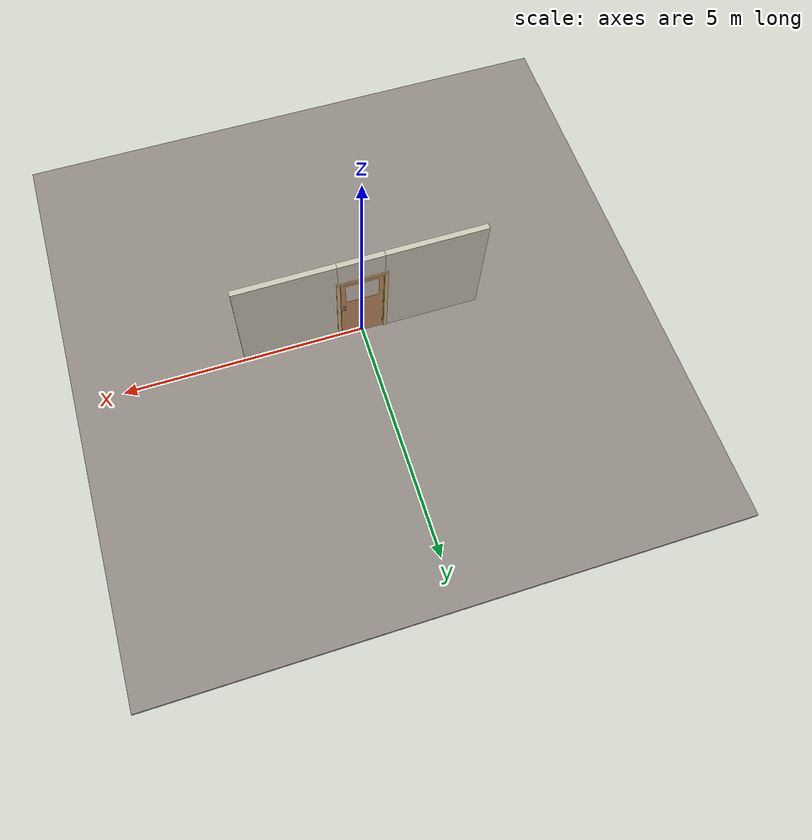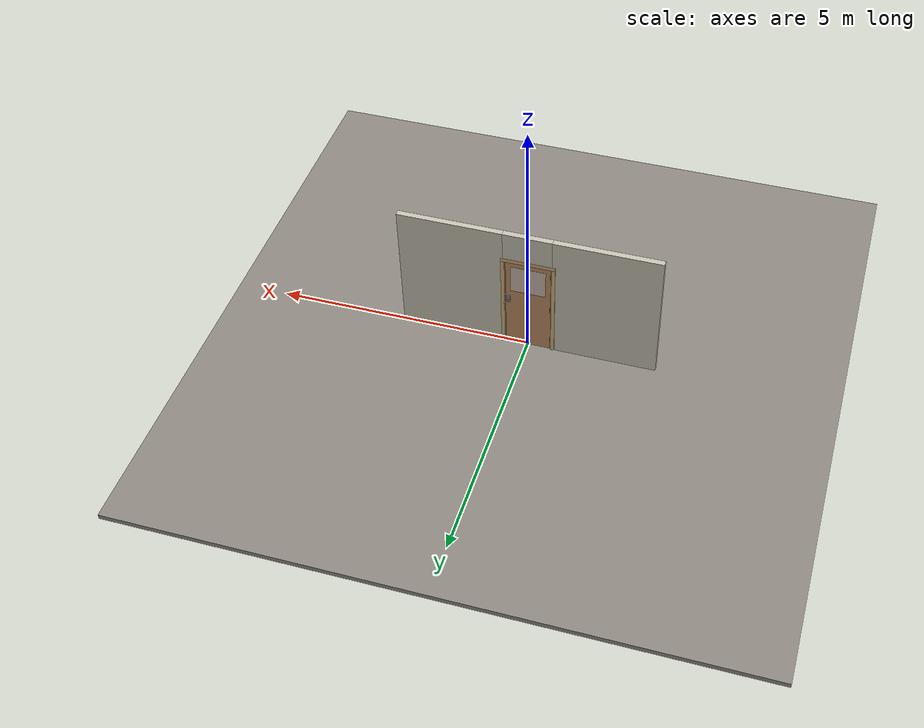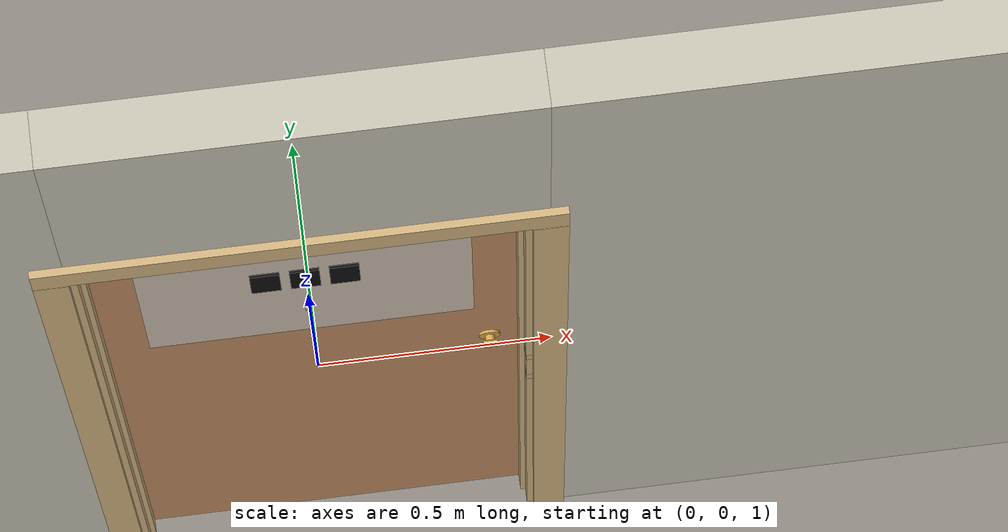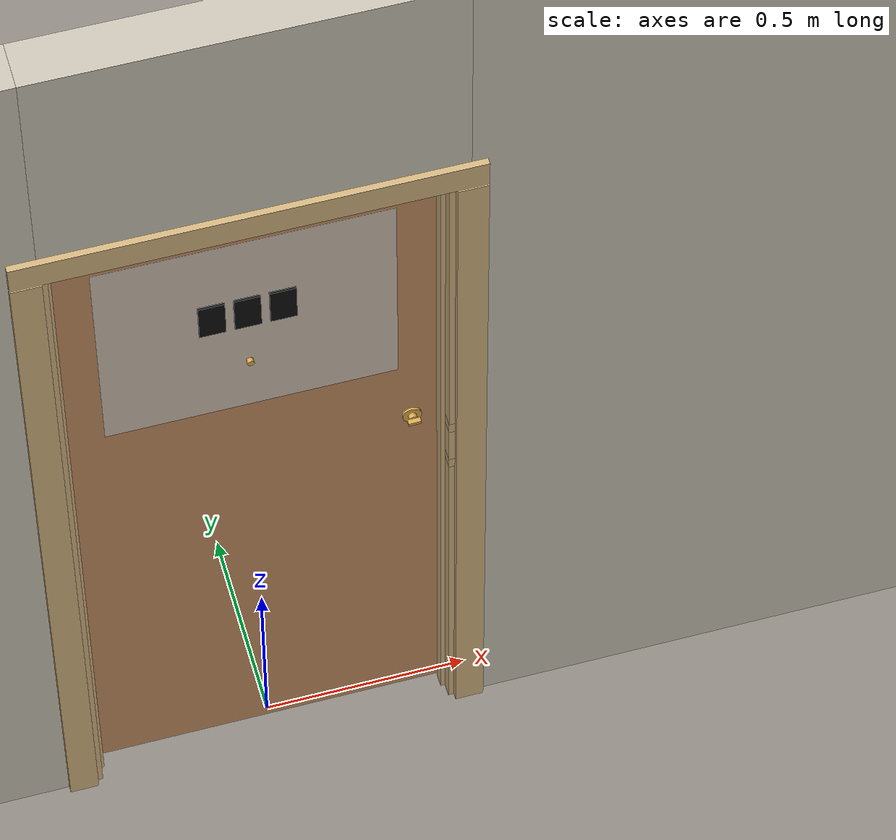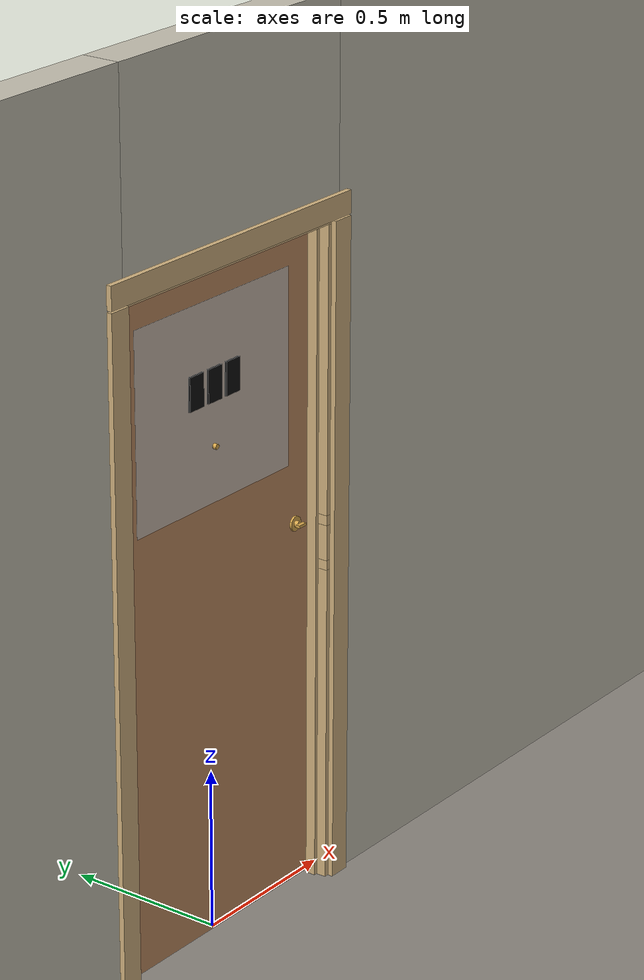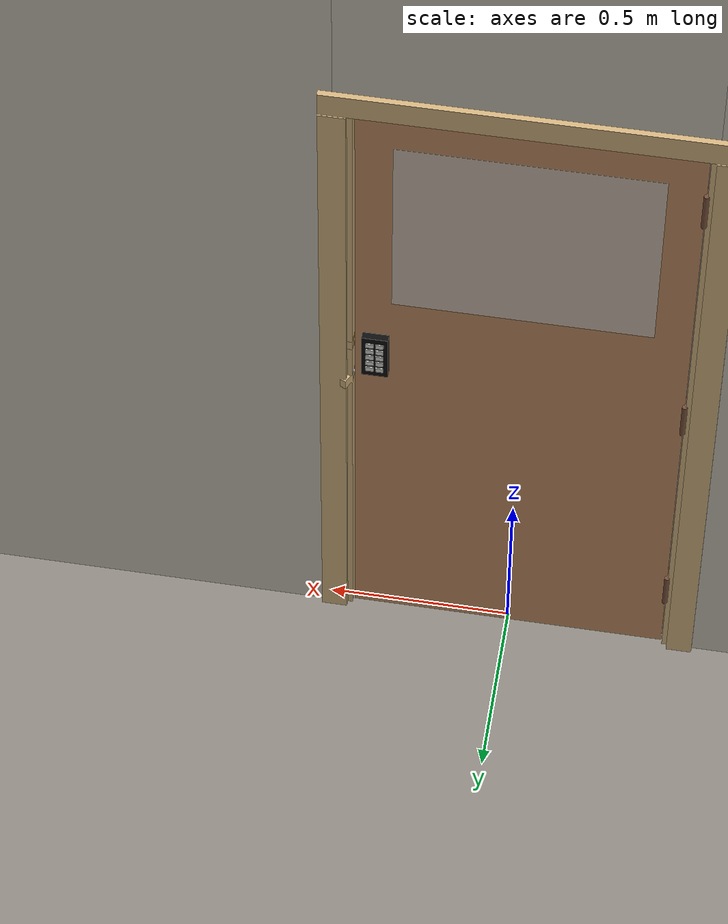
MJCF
<?xml version="1.0" ?>
<mujoco model="db0464_swing_single_full">
  <compiler angle="radian" meshdir="../../hardware" texturedir="../../textures" autolimits="true" inertiafromgeom="false"/>
  <option timestep="0.002" integrator="implicitfast" cone="elliptic" impratio="10" noslip_iterations="3">
    <flag multiccd="enable"/>
  </option>
  <size memory="16M"/>
  <default>
    <geom condim="4" solref="0.005 1" solimp="0.95 0.99 0.001"/>
    <joint solreflimit="0.005 1" solimplimit="0.95 0.99 0.001"/>
    <tendon solreflimit="0.005 1"/>
    <equality solref="0.002 1"/>
  </default>
  <visual>
    <headlight ambient="0.4 0.4 0.4" diffuse="0.7 0.7 0.7" specular="0.2 0.2 0.2"/>
    <quality shadowsize="4096"/>
    <map znear="0.01" zfar="60"/>
  </visual>
  <asset>
    <mesh name="hinge_e22b26c0c1" file="hinge_e22b26c0c1.obj"/>
    <mesh name="hinge_jamb_e1d088f8dc" file="hinge_jamb_e1d088f8dc.obj"/>
    <mesh name="house_numbers_ad0a8e8be0" file="house_numbers_ad0a8e8be0.obj"/>
    <mesh name="keypad_body_3b2d063948" file="keypad_body_3b2d063948.obj"/>
    <mesh name="peephole_f829311a59" file="peephole_f829311a59.obj"/>
    <mesh name="thumbturn_eb5c9899a3" file="thumbturn_eb5c9899a3.obj"/>
    <material name="mat_floor" rgba="0.55 0.53 0.5 1" specular="0.2" shininess="0.15" reflectance="0"/>
    <material name="mat_wall" rgba="0.78 0.76 0.7 1" specular="0.2" shininess="0.1" reflectance="0"/>
    <material name="mat_leaf" rgba="0.75 0.55 0.38 1" specular="0.2" shininess="0.45" reflectance="0"/>
    <material name="mat_glass" rgba="0.9 0.93 0.95 0.6" specular="0.2" shininess="0.5" reflectance="0.1"/>
    <material name="mat_hinge" rgba="0.45 0.3 0.22 1" specular="0.5" shininess="0.1" reflectance="0.2"/>
    <material name="mat_op_nickel_satin" rgba="0.72 0.7 0.66 1" specular="0.8" shininess="0.65" reflectance="0.4"/>
    <material name="mat_trim" rgba="0.85 0.66 0.3 1" specular="0.8" shininess="0.75" reflectance="0.4"/>
    <material name="mat_keypad" rgba="0.05 0.05 0.05 1" specular="0.38" shininess="0.3" reflectance="0.12"/>
    <material name="mat_key" rgba="0.85 0.85 0.82 1" specular="0.2" shininess="0.5" reflectance="0"/>
    <material name="mat_bolt" rgba="0.75 0.76 0.77 1" specular="0.8" shininess="0.65" reflectance="0.4"/>
    <material name="mat_deadbolt" rgba="0.85 0.66 0.3 1" specular="0.8" shininess="0.75" reflectance="0.4"/>
    <material name="mat_frame" rgba="0.82 0.7 0.5 1" specular="0.2" shininess="0.45" reflectance="0"/>
    <material name="mat_seal" rgba="0.1 0.1 0.1 1" specular="0.2" shininess="0.1" reflectance="0"/>
    <material name="mat_peephole" rgba="0.85 0.66 0.3 1" specular="0.8" shininess="0.75" reflectance="0.4"/>
    <material name="mat_numbers" rgba="0.05 0.05 0.05 1" specular="0.38" shininess="0.3" reflectance="0.12"/>
    <material name="mat_drip" rgba="0.8 0.81 0.83 1" specular="0.8" shininess="0.6" reflectance="0.4"/>
    <texture name="skybox" type="skybox" builtin="gradient" rgb1="0.6 0.7 0.85" rgb2="0.9 0.92 0.95" width="256" height="256"/>
  </asset>
  <worldbody>
    <light name="sun" pos="1.5 -2.5 4" dir="-0.3 0.5 -0.8" directional="true" diffuse="0.8 0.8 0.8" specular="0.3 0.3 0.3" castshadow="true"/>
    <light name="fill" pos="-1.5 2.5 3" dir="0.3 -0.5 -0.7" directional="true" diffuse="0.35 0.35 0.4" castshadow="false"/>
    <camera name="robot_view" pos="0 -2.570688 1.734312" xyaxes="1 0 0 0 0.26963 0.962964" fovy="52"/>
    <camera name="far_view" pos="0 2.513687 1.734312" xyaxes="-1 0 0 0 -0.26963 0.962964" fovy="52"/>
    <camera name="iso" pos="1.932062 -2.163938 2.141063" xyaxes="0.741536 0.670913 0 -0.242917 0.268487 0.932151" fovy="46"/>
    <camera name="detail_handle" pos="0.508 -0.8285 1.296" xyaxes="0.97561 0.219512 0 -0.070934 0.315262 0.94635" fovy="38"/>
    <geom name="floor" type="box" size="6 6 0.05" pos="0 0 -0.05" material="mat_floor" group="0" contype="1" conaffinity="1" friction="0.8 0.005 0.0001" density="2400"/>
    <geom name="wall_left" type="box" size="1.0225 0.0575 1.35" pos="-1.4775 -0.0285 1.35" material="mat_wall" group="0" contype="1" conaffinity="1" friction="0.6 0.005 0.0001" density="800"/>
    <geom name="wall_right" type="box" size="1.0075 0.0575 1.35" pos="1.4925 -0.0285 1.35" material="mat_wall" group="0" contype="1" conaffinity="1" friction="0.6 0.005 0.0001" density="800"/>
    <geom name="wall_header" type="box" size="0.47 0.0575 0.303" pos="0.015 -0.0285 2.397" material="mat_wall" group="0" contype="1" conaffinity="1" friction="0.6 0.005 0.0001" density="800"/>
    <geom name="hinge_0_jamb" type="mesh" mesh="hinge_jamb_e1d088f8dc" pos="-0.433 0.029 0.259" quat="0 1 0 0" material="mat_hinge" group="1" contype="0" conaffinity="0" density="7850"/>
    <geom name="hinge_1_jamb" type="mesh" mesh="hinge_jamb_e1d088f8dc" pos="-0.433 0.029 1.025" quat="0 1 0 0" material="mat_hinge" group="1" contype="0" conaffinity="0" density="7850"/>
    <geom name="hinge_2_jamb" type="mesh" mesh="hinge_jamb_e1d088f8dc" pos="-0.433 0.029 1.861" quat="0 1 0 0" material="mat_hinge" group="1" contype="0" conaffinity="0" density="7850"/>
    <geom name="leaf_deadbolt_strike_b" type="box" size="0.0155 0.003 0.0005" pos="0.4355 0 1.1375" quat="-0.5 -0.5 0.5 0.5" material="mat_deadbolt" group="1" contype="0" conaffinity="0" density="7800"/>
    <geom name="leaf_deadbolt_strike_l" type="box" size="0.003 0.0155 0.0005" pos="0.4355 0.0125 1.156" quat="-0.5 -0.5 0.5 0.5" material="mat_deadbolt" group="1" contype="0" conaffinity="0" density="7800"/>
    <geom name="leaf_deadbolt_strike_t" type="box" size="0.0155 0.003 0.0005" pos="0.4355 0 1.1745" quat="-0.5 -0.5 0.5 0.5" material="mat_deadbolt" group="1" contype="0" conaffinity="0" density="7800"/>
    <geom name="leaf_deadbolt_strike_r" type="box" size="0.003 0.0155 0.0005" pos="0.4355 -0.0125 1.156" quat="-0.5 -0.5 0.5 0.5" material="mat_deadbolt" group="1" contype="0" conaffinity="0" density="7800"/>
    <geom name="jamb_hinge" type="box" size="0.0095 0.0575 1.0225" pos="-0.4455 -0.0285 1.0225" material="mat_frame" group="0" contype="1" conaffinity="1" friction="0.6 0.005 0.0001" density="400"/>
    <geom name="strike_1016_wall_n" type="box" size="0.0245 0.03975 0.015" pos="0.4605 -0.04625 1.016" material="mat_frame" group="0" contype="1" conaffinity="1" friction="0.6 0.005 0.0001" density="400"/>
    <geom name="strike_1016_wall_p" type="box" size="0.0245 0.008 0.015" pos="0.4605 0.0145 1.016" material="mat_frame" group="0" contype="1" conaffinity="1" friction="0.6 0.005 0.0001" density="400"/>
    <geom name="strike_1016_ramp" type="box" size="0.0245 0.016771 0.015" pos="0.465413 0.026543 1.016" quat="0.973249 0 0 -0.229753" material="mat_frame" group="0" contype="1" conaffinity="1" friction="0.12 0.005 0.0001" density="400"/>
    <geom name="strike_1016_back" type="box" size="0.0155 0.0065 0.015" pos="0.4695 0 1.016" material="mat_frame" group="0" contype="1" conaffinity="1" friction="0.6 0.005 0.0001" density="400"/>
    <geom name="strike_1156_wall_n" type="box" size="0.0245 0.03825 0.0155" pos="0.4605 -0.04775 1.156" material="mat_frame" group="0" contype="1" conaffinity="1" friction="0.6 0.005 0.0001" density="400"/>
    <geom name="strike_1156_wall_p" type="box" size="0.0245 0.00975 0.0155" pos="0.4605 0.01925 1.156" material="mat_frame" group="0" contype="1" conaffinity="1" friction="0.6 0.005 0.0001" density="400"/>
    <geom name="strike_1156_back" type="box" size="0.0098 0.0095 0.0155" pos="0.4752 0 1.156" material="mat_frame" group="0" contype="1" conaffinity="1" friction="0.6 0.005 0.0001" density="400"/>
    <geom name="jamb_strike_0" type="box" size="0.0245 0.0575 0.5005" pos="0.4605 -0.0285 0.5005" material="mat_frame" group="0" contype="1" conaffinity="1" friction="0.6 0.005 0.0001" density="400"/>
    <geom name="jamb_strike_1" type="box" size="0.0245 0.0575 0.05475" pos="0.4605 -0.0285 1.08575" material="mat_frame" group="0" contype="1" conaffinity="1" friction="0.6 0.005 0.0001" density="400"/>
    <geom name="jamb_strike_2" type="box" size="0.0245 0.0575 0.43675" pos="0.4605 -0.0285 1.60825" material="mat_frame" group="0" contype="1" conaffinity="1" friction="0.6 0.005 0.0001" density="400"/>
    <geom name="jamb_head" type="box" size="0.47 0.0575 0.0095" pos="0.015 -0.0285 2.0545" material="mat_frame" group="0" contype="1" conaffinity="1" friction="0.6 0.005 0.0001" density="400"/>
    <geom name="head_stud" type="box" size="0.47 0.0575 0.015" pos="0.015 -0.0285 2.079" material="mat_wall" group="0" contype="1" conaffinity="1" friction="0.6 0.005 0.0001" density="500"/>
    <geom name="stop_hinge" type="box" size="0.0055 0.016 1.0225" pos="-0.4305 -0.0385 1.0225" material="mat_frame" group="0" contype="1" conaffinity="1" friction="0.6 0.005 0.0001" density="400"/>
    <geom name="stop_strike" type="box" size="0.0055 0.016 1.0225" pos="0.4305 -0.0385 1.0225" material="mat_frame" group="0" contype="1" conaffinity="1" friction="0.6 0.005 0.0001" density="400"/>
    <geom name="stop_head" type="box" size="0.436 0.016 0.0055" pos="0 -0.0385 2.0395" material="mat_frame" group="0" contype="1" conaffinity="1" friction="0.6 0.005 0.0001" density="400"/>
    <geom name="seal_hinge" type="box" size="0.004 0.003 1.0225" pos="-0.433 -0.025 1.0225" material="mat_seal" group="1" contype="0" conaffinity="0" density="1100"/>
    <geom name="seal_strike" type="box" size="0.004 0.003 1.0225" pos="0.433 -0.025 1.0225" material="mat_seal" group="1" contype="0" conaffinity="0" density="1100"/>
    <geom name="seal_head" type="box" size="0.416 0.003 0.008" pos="0 -0.025 2.033" material="mat_seal" group="1" contype="0" conaffinity="0" density="1100"/>
    <geom name="casing_l_n" type="box" size="0.035 0.008 1.032" pos="-0.485 -0.094 1.0225" material="mat_frame" group="2" contype="0" conaffinity="0" density="400"/>
    <geom name="casing_r_n" type="box" size="0.035 0.008 1.032" pos="0.485 -0.094 1.0225" material="mat_frame" group="2" contype="0" conaffinity="0" density="400"/>
    <geom name="casing_h_n" type="box" size="0.52 0.008 0.035" pos="0 -0.094 2.094" material="mat_frame" group="2" contype="0" conaffinity="0" density="400"/>
    <geom name="casing_l_p" type="box" size="0.035 0.008 1.032" pos="-0.485 0.037 1.0225" material="mat_frame" group="2" contype="0" conaffinity="0" density="400"/>
    <geom name="casing_r_p" type="box" size="0.035 0.008 1.032" pos="0.485 0.037 1.0225" material="mat_frame" group="2" contype="0" conaffinity="0" density="400"/>
    <geom name="casing_h_p" type="box" size="0.52 0.008 0.035" pos="0 0.037 2.094" material="mat_frame" group="2" contype="0" conaffinity="0" density="400"/>
    <geom name="weather_drip_cap" type="box" size="0.486 0.03 0.008" pos="0 -0.03 2.09" material="mat_drip" group="2" contype="0" conaffinity="0" density="2700"/>
    <geom name="weather_drip_cap_bracket" type="box" size="0.1458 0.015 0.005" pos="0 0.0145 2.09" material="mat_drip" group="2" contype="0" conaffinity="0" density="7850"/>
    <site name="approach_point" pos="0 -1.5 0" quat="1 0 0 0" size="0.05" rgba="0.2 0.9 0.2 0.5" group="4"/>
    <site name="goal_point" pos="0 1.5 0" quat="1 0 0 0" size="0.05" rgba="0.2 0.9 0.2 0.5" group="4"/>
    <site name="door_plane_center" pos="0 0 1.0225" quat="1 0 0 0" size="0.02" rgba="0.2 0.9 0.2 0.5" group="4"/>
    <body name="leaf" pos="-0.436 0 0">
      <inertial pos="0.430475 0.00073 1.029992" mass="39.889535" quat="0.500294 -0.500378 -0.499604 -0.499723" diaginertia="2.638075814 13.636807073 16.260229233"/>
      <joint name="leaf_hinge" type="hinge" axis="0 0 1" pos="0.003 0.029 0" limited="true" range="0 1.570796" solreflimit="0.02 1" damping="0.254501" frictionloss="5.41993" armature="0.02"/>
      <geom name="leaf_slab" type="box" size="0.432 0.022 1.016" pos="0.435 0 1.025" material="mat_leaf" group="0" contype="1" conaffinity="1" friction="0.35 0.005 0.0001" density="1"/>
      <geom name="leaf_glass_0" type="box" size="0.33696 0.0228 0.298704" pos="0.435 0 1.640696" material="mat_glass" group="1" contype="0" conaffinity="0" density="1"/>
      <geom name="hinge_0" type="mesh" mesh="hinge_e22b26c0c1" pos="0.003 0.029 0.259" quat="0 1 0 0" material="mat_hinge" group="1" contype="0" conaffinity="0" density="7850"/>
      <geom name="hinge_1" type="mesh" mesh="hinge_e22b26c0c1" pos="0.003 0.029 1.025" quat="0 1 0 0" material="mat_hinge" group="1" contype="0" conaffinity="0" density="7850"/>
      <geom name="hinge_2" type="mesh" mesh="hinge_e22b26c0c1" pos="0.003 0.029 1.861" quat="0 1 0 0" material="mat_hinge" group="1" contype="0" conaffinity="0" density="7850"/>
      <geom name="leaf_keypad_body" type="mesh" mesh="keypad_body_3b2d063948" pos="0.812 0.022 1.136" quat="0 0 0.707107 0.707107" material="mat_keypad" group="0" contype="1" conaffinity="1" friction="0.6 0.005 0.0001" density="2000"/>
      <geom name="leaf_latch_bolt_faceplate" type="box" size="0.0006 0.011 0.025" pos="0.8664 0 1.016" material="mat_bolt" group="1" contype="0" conaffinity="0" density="8500"/>
      <geom name="leaf_deadbolt_faceplate" type="box" size="0.0006 0.014 0.0245" pos="0.8664 0 1.156" material="mat_deadbolt" group="1" contype="0" conaffinity="0" density="8500"/>
      <geom name="peephole" type="mesh" mesh="peephole_f829311a59" pos="0.435 -0.022 1.509" quat="0.707107 0.707107 0 0" material="mat_peephole" group="2" contype="0" conaffinity="0" density="8500"/>
      <geom name="house_numbers" type="mesh" mesh="house_numbers_ad0a8e8be0" pos="0.435 -0.022 1.691" quat="0.707107 0.707107 0 0" material="mat_numbers" group="2" contype="0" conaffinity="0" density="1000"/>
      <site name="leaf_edge_mid" pos="0.867 0 1.016" quat="1 0 0 0" size="0.02" rgba="0.2 0.9 0.2 0.5" group="4"/>
      <body name="leaf_handle" pos="0.812 0 1.016">
        <inertial pos="0 0 0" mass="0.037288" quat="0.5 0.5 0.5 0.5" diaginertia="0.000000671 0.000005817 0.000005817"/>
        <joint name="leaf_handle_hinge" type="hinge" axis="0 -1 0" limited="true" range="0 0.87" damping="0.141426" frictionloss="0.048" stiffness="0.5" springref="-0.5" armature="0.01"/>
        <geom name="leaf_handle_spindle" type="cylinder" size="0.006 0.021" pos="0 0 0" quat="0.707107 -0.707107 0 0" material="mat_op_nickel_satin" group="1" contype="0" conaffinity="0" density="7850"/>
      </body>
      <body name="leaf_keypad_key_1" pos="0.825 0.042 1.184">
        <inertial pos="0 0.0015 0" mass="0.001008" quat="0 0 0.707107 0.707107" diaginertia="0.000000017 0.000000034 0.00000005"/>
        <joint name="leaf_keypad_key_1_slide" type="slide" axis="0 -1 0" limited="true" range="0 0.0015" damping="14" frictionloss="0.05" stiffness="1000" springref="-0.0015" armature="0.1"/>
        <geom name="leaf_keypad_key_1_geom" type="box" size="0.01 0.0015 0.007" pos="0 0.0015 0" material="mat_key" group="0" contype="1" conaffinity="1" friction="0.6 0.005 0.0001" density="1200"/>
        <site name="leaf_keypad_key_1_press" pos="0 0.005 0" quat="1 0 0 0" size="0.008" rgba="0.2 0.9 0.2 0.5" group="4"/>
      </body>
      <body name="leaf_keypad_key_2" pos="0.799 0.042 1.184">
        <inertial pos="0 0.0015 0" mass="0.001008" quat="0 0 0.707107 0.707107" diaginertia="0.000000017 0.000000034 0.00000005"/>
        <joint name="leaf_keypad_key_2_slide" type="slide" axis="0 -1 0" limited="true" range="0 0.0015" damping="14" frictionloss="0.05" stiffness="1000" springref="-0.0015" armature="0.1"/>
        <geom name="leaf_keypad_key_2_geom" type="box" size="0.01 0.0015 0.007" pos="0 0.0015 0" material="mat_key" group="0" contype="1" conaffinity="1" friction="0.6 0.005 0.0001" density="1200"/>
        <site name="leaf_keypad_key_2_press" pos="0 0.005 0" quat="1 0 0 0" size="0.008" rgba="0.2 0.9 0.2 0.5" group="4"/>
      </body>
      <body name="leaf_keypad_key_3" pos="0.825 0.042 1.16">
        <inertial pos="0 0.0015 0" mass="0.001008" quat="0 0 0.707107 0.707107" diaginertia="0.000000017 0.000000034 0.00000005"/>
        <joint name="leaf_keypad_key_3_slide" type="slide" axis="0 -1 0" limited="true" range="0 0.0015" damping="14" frictionloss="0.05" stiffness="1000" springref="-0.0015" armature="0.1"/>
        <geom name="leaf_keypad_key_3_geom" type="box" size="0.01 0.0015 0.007" pos="0 0.0015 0" material="mat_key" group="0" contype="1" conaffinity="1" friction="0.6 0.005 0.0001" density="1200"/>
        <site name="leaf_keypad_key_3_press" pos="0 0.005 0" quat="1 0 0 0" size="0.008" rgba="0.2 0.9 0.2 0.5" group="4"/>
      </body>
      <body name="leaf_keypad_key_4" pos="0.799 0.042 1.16">
        <inertial pos="0 0.0015 0" mass="0.001008" quat="0 0 0.707107 0.707107" diaginertia="0.000000017 0.000000034 0.00000005"/>
        <joint name="leaf_keypad_key_4_slide" type="slide" axis="0 -1 0" limited="true" range="0 0.0015" damping="14" frictionloss="0.05" stiffness="1000" springref="-0.0015" armature="0.1"/>
        <geom name="leaf_keypad_key_4_geom" type="box" size="0.01 0.0015 0.007" pos="0 0.0015 0" material="mat_key" group="0" contype="1" conaffinity="1" friction="0.6 0.005 0.0001" density="1200"/>
        <site name="leaf_keypad_key_4_press" pos="0 0.005 0" quat="1 0 0 0" size="0.008" rgba="0.2 0.9 0.2 0.5" group="4"/>
      </body>
      <body name="leaf_keypad_key_5" pos="0.825 0.042 1.136">
        <inertial pos="0 0.0015 0" mass="0.001008" quat="0 0 0.707107 0.707107" diaginertia="0.000000017 0.000000034 0.00000005"/>
        <joint name="leaf_keypad_key_5_slide" type="slide" axis="0 -1 0" limited="true" range="0 0.0015" damping="14" frictionloss="0.05" stiffness="1000" springref="-0.0015" armature="0.1"/>
        <geom name="leaf_keypad_key_5_geom" type="box" size="0.01 0.0015 0.007" pos="0 0.0015 0" material="mat_key" group="0" contype="1" conaffinity="1" friction="0.6 0.005 0.0001" density="1200"/>
        <site name="leaf_keypad_key_5_press" pos="0 0.005 0" quat="1 0 0 0" size="0.008" rgba="0.2 0.9 0.2 0.5" group="4"/>
      </body>
      <body name="leaf_keypad_key_6" pos="0.799 0.042 1.136">
        <inertial pos="0 0.0015 0" mass="0.001008" quat="0 0 0.707107 0.707107" diaginertia="0.000000017 0.000000034 0.00000005"/>
        <joint name="leaf_keypad_key_6_slide" type="slide" axis="0 -1 0" limited="true" range="0 0.0015" damping="14" frictionloss="0.05" stiffness="1000" springref="-0.0015" armature="0.1"/>
        <geom name="leaf_keypad_key_6_geom" type="box" size="0.01 0.0015 0.007" pos="0 0.0015 0" material="mat_key" group="0" contype="1" conaffinity="1" friction="0.6 0.005 0.0001" density="1200"/>
        <site name="leaf_keypad_key_6_press" pos="0 0.005 0" quat="1 0 0 0" size="0.008" rgba="0.2 0.9 0.2 0.5" group="4"/>
      </body>
      <body name="leaf_keypad_key_7" pos="0.825 0.042 1.112">
        <inertial pos="0 0.0015 0" mass="0.001008" quat="0 0 0.707107 0.707107" diaginertia="0.000000017 0.000000034 0.00000005"/>
        <joint name="leaf_keypad_key_7_slide" type="slide" axis="0 -1 0" limited="true" range="0 0.0015" damping="14" frictionloss="0.05" stiffness="1000" springref="-0.0015" armature="0.1"/>
        <geom name="leaf_keypad_key_7_geom" type="box" size="0.01 0.0015 0.007" pos="0 0.0015 0" material="mat_key" group="0" contype="1" conaffinity="1" friction="0.6 0.005 0.0001" density="1200"/>
        <site name="leaf_keypad_key_7_press" pos="0 0.005 0" quat="1 0 0 0" size="0.008" rgba="0.2 0.9 0.2 0.5" group="4"/>
      </body>
      <body name="leaf_keypad_key_8" pos="0.799 0.042 1.112">
        <inertial pos="0 0.0015 0" mass="0.001008" quat="0 0 0.707107 0.707107" diaginertia="0.000000017 0.000000034 0.00000005"/>
        <joint name="leaf_keypad_key_8_slide" type="slide" axis="0 -1 0" limited="true" range="0 0.0015" damping="14" frictionloss="0.05" stiffness="1000" springref="-0.0015" armature="0.1"/>
        <geom name="leaf_keypad_key_8_geom" type="box" size="0.01 0.0015 0.007" pos="0 0.0015 0" material="mat_key" group="0" contype="1" conaffinity="1" friction="0.6 0.005 0.0001" density="1200"/>
        <site name="leaf_keypad_key_8_press" pos="0 0.005 0" quat="1 0 0 0" size="0.008" rgba="0.2 0.9 0.2 0.5" group="4"/>
      </body>
      <body name="leaf_keypad_key_9" pos="0.825 0.042 1.088">
        <inertial pos="0 0.0015 0" mass="0.001008" quat="0 0 0.707107 0.707107" diaginertia="0.000000017 0.000000034 0.00000005"/>
        <joint name="leaf_keypad_key_9_slide" type="slide" axis="0 -1 0" limited="true" range="0 0.0015" damping="14" frictionloss="0.05" stiffness="1000" springref="-0.0015" armature="0.1"/>
        <geom name="leaf_keypad_key_9_geom" type="box" size="0.01 0.0015 0.007" pos="0 0.0015 0" material="mat_key" group="0" contype="1" conaffinity="1" friction="0.6 0.005 0.0001" density="1200"/>
        <site name="leaf_keypad_key_9_press" pos="0 0.005 0" quat="1 0 0 0" size="0.008" rgba="0.2 0.9 0.2 0.5" group="4"/>
      </body>
      <body name="leaf_keypad_key_0" pos="0.799 0.042 1.088">
        <inertial pos="0 0.0015 0" mass="0.001008" quat="0 0 0.707107 0.707107" diaginertia="0.000000017 0.000000034 0.00000005"/>
        <joint name="leaf_keypad_key_0_slide" type="slide" axis="0 -1 0" limited="true" range="0 0.0015" damping="14" frictionloss="0.05" stiffness="1000" springref="-0.0015" armature="0.1"/>
        <geom name="leaf_keypad_key_0_geom" type="box" size="0.01 0.0015 0.007" pos="0 0.0015 0" material="mat_key" group="0" contype="1" conaffinity="1" friction="0.6 0.005 0.0001" density="1200"/>
        <site name="leaf_keypad_key_0_press" pos="0 0.005 0" quat="1 0 0 0" size="0.008" rgba="0.2 0.9 0.2 0.5" group="4"/>
      </body>
      <body name="leaf_latch_bolt" pos="0.867 0 1.016">
        <inertial pos="-0.008 0 0" mass="0.027149" quat="0 0 0.707107 0.707107" diaginertia="0.000000328 0.000003943 0.000003943"/>
        <joint name="leaf_latch_bolt_slide" type="slide" axis="-1 0 0" limited="true" range="0 0.014" damping="2" frictionloss="0.3" stiffness="400" springref="-0.01" armature="0.1"/>
        <geom name="leaf_latch_bolt_capsule" type="capsule" size="0.005 0.017" pos="-0.008 0 0" quat="0.707107 0 0.707107 0" material="mat_bolt" group="0" contype="1" conaffinity="1" friction="0.2 0.005 0.0001" density="8500"/>
      </body>
      <body name="leaf_deadbolt" pos="0.867 0 1.156">
        <inertial pos="-0.0277 0 0" mass="0.18836" quat="0 0 0.707107 0.707107" diaginertia="0.000013829 0.000052194 0.000057986"/>
        <joint name="leaf_deadbolt_slide" type="slide" axis="-1 0 0" limited="true" range="0 0.0254" damping="5" frictionloss="1.5" armature="0.1" ref="0.0254"/>
        <geom name="leaf_deadbolt_box" type="box" size="0.0277 0.008 0.0125" pos="-0.0277 0 0" material="mat_deadbolt" group="0" contype="1" conaffinity="1" friction="0.3 0.005 0.0001" density="8500"/>
      </body>
      <body name="leaf_deadbolt_thumbturn" pos="0.802 -0.022 1.156">
        <inertial pos="0 -0.012928 0" mass="0.178946" quat="0.000001 0.707107 -0.707107 -0.000001" diaginertia="0.000026045 0.000026215 0.000032438"/>
        <joint name="leaf_deadbolt_thumbturn_hinge" type="hinge" axis="0 1 0" limited="true" range="0 1.5708" damping="0.05" frictionloss="0.3" armature="0.005" ref="1.5708"/>
        <geom name="leaf_deadbolt_thumbturn_mesh" type="mesh" mesh="thumbturn_eb5c9899a3" pos="0 0 0" quat="0.499999 0.499999 0.500001 -0.500001" material="mat_deadbolt" group="0" contype="1" conaffinity="1" friction="0.6 0.005 0.0001" density="7100"/>
        <geom name="leaf_deadbolt_thumbturn_col" type="box" size="0.006 0.012 0.016" pos="0 -0.02 0" quat="0.707105 0 0.707108 0" material="mat_deadbolt" group="3" contype="1" conaffinity="1" rgba="0.8 0.3 0.3 0.25" friction="0.6 0.005 0.0001" density="7100"/>
      </body>
    </body>
  </worldbody>
  <tendon>
    <fixed name="leaf_latch_bolt_coupling" limited="true" range="0 10">
      <joint joint="leaf_latch_bolt_slide" coef="1"/>
      <joint joint="leaf_handle_hinge" coef="-0.017284"/>
    </fixed>
  </tendon>
  <equality>
    <joint name="leaf_deadbolt_couple" joint1="leaf_deadbolt_slide" joint2="leaf_deadbolt_thumbturn_hinge" polycoef="0 0.01617 0 0 0" active="true"/>
  </equality>
  <contact>
    <exclude body1="leaf_deadbolt" body2="leaf_deadbolt_thumbturn"/>
  </contact>
  <sensor>
    <jointpos name="leaf_hinge_pos" joint="leaf_hinge"/>
    <jointvel name="leaf_hinge_vel" joint="leaf_hinge"/>
    <jointpos name="leaf_handle_hinge_pos" joint="leaf_handle_hinge"/>
    <jointvel name="leaf_handle_hinge_vel" joint="leaf_handle_hinge"/>
    <jointpos name="leaf_keypad_key_1_slide_pos" joint="leaf_keypad_key_1_slide"/>
    <jointvel name="leaf_keypad_key_1_slide_vel" joint="leaf_keypad_key_1_slide"/>
    <jointpos name="leaf_keypad_key_2_slide_pos" joint="leaf_keypad_key_2_slide"/>
    <jointvel name="leaf_keypad_key_2_slide_vel" joint="leaf_keypad_key_2_slide"/>
    <jointpos name="leaf_keypad_key_3_slide_pos" joint="leaf_keypad_key_3_slide"/>
    <jointvel name="leaf_keypad_key_3_slide_vel" joint="leaf_keypad_key_3_slide"/>
    <jointpos name="leaf_keypad_key_4_slide_pos" joint="leaf_keypad_key_4_slide"/>
    <jointvel name="leaf_keypad_key_4_slide_vel" joint="leaf_keypad_key_4_slide"/>
    <jointpos name="leaf_keypad_key_5_slide_pos" joint="leaf_keypad_key_5_slide"/>
    <jointvel name="leaf_keypad_key_5_slide_vel" joint="leaf_keypad_key_5_slide"/>
    <jointpos name="leaf_keypad_key_6_slide_pos" joint="leaf_keypad_key_6_slide"/>
    <jointvel name="leaf_keypad_key_6_slide_vel" joint="leaf_keypad_key_6_slide"/>
    <jointpos name="leaf_keypad_key_7_slide_pos" joint="leaf_keypad_key_7_slide"/>
    <jointvel name="leaf_keypad_key_7_slide_vel" joint="leaf_keypad_key_7_slide"/>
    <jointpos name="leaf_keypad_key_8_slide_pos" joint="leaf_keypad_key_8_slide"/>
    <jointvel name="leaf_keypad_key_8_slide_vel" joint="leaf_keypad_key_8_slide"/>
    <jointpos name="leaf_keypad_key_9_slide_pos" joint="leaf_keypad_key_9_slide"/>
    <jointvel name="leaf_keypad_key_9_slide_vel" joint="leaf_keypad_key_9_slide"/>
    <jointpos name="leaf_keypad_key_0_slide_pos" joint="leaf_keypad_key_0_slide"/>
    <jointvel name="leaf_keypad_key_0_slide_vel" joint="leaf_keypad_key_0_slide"/>
    <jointpos name="leaf_latch_bolt_slide_pos" joint="leaf_latch_bolt_slide"/>
    <jointvel name="leaf_latch_bolt_slide_vel" joint="leaf_latch_bolt_slide"/>
    <jointpos name="leaf_deadbolt_slide_pos" joint="leaf_deadbolt_slide"/>
    <jointvel name="leaf_deadbolt_slide_vel" joint="leaf_deadbolt_slide"/>
    <jointpos name="leaf_deadbolt_thumbturn_hinge_pos" joint="leaf_deadbolt_thumbturn_hinge"/>
    <jointvel name="leaf_deadbolt_thumbturn_hinge_vel" joint="leaf_deadbolt_thumbturn_hinge"/>
  </sensor>
</mujoco>
